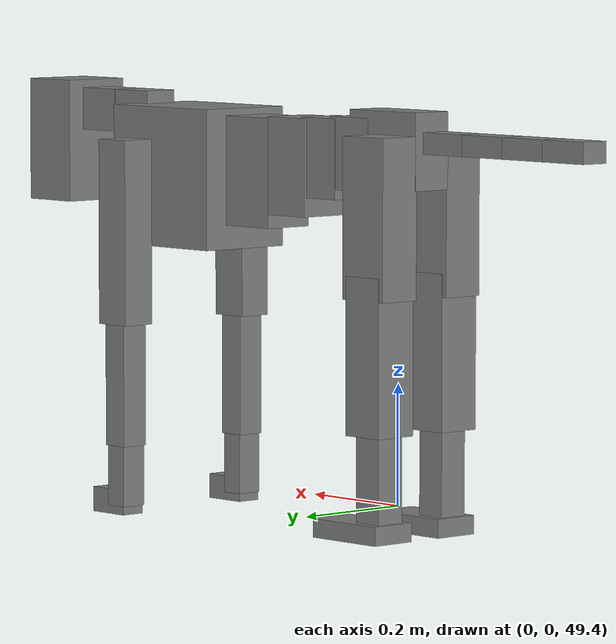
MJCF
<mujoco model="dog">

    <default>
        <joint armature="0.02" stiffness="1" damping="0.2" limited="true"/>
        <geom condim="3" friction="1 0.05 0.05" margin="0.01"/>
        <motor ctrllimited="true" ctrlrange="-1.0 1.0" forcelimited="true" gear="50"/>
    </default>

    <compiler inertiafromgeom="true" angle="radian"/>

    <option timestep="0.016" iterations="50" tolerance="1e-10" solver="Newton" jacobian="dense" cone="pyramidal"/>

    <size nconmax="20000" njmax="60000" nstack="5000000"/>
    <visual>
        <map force="0.1" zfar="30"/>
        <rgba haze="0.15 0.25 0.35 1"/>
        <quality shadowsize="2048"/>
        <global offwidth="800" offheight="800"/>
    </visual>

    <asset>
        <texture type="skybox" builtin="gradient" rgb1="0.3 0.5 0.7" rgb2="0 0 0" width="512" height="512"/>
        <texture name="texplane" type="2d" builtin="checker" rgb1=".2 .3 .4" rgb2=".1 0.15 0.2" width="512" height="512"
                 mark="cross" markrgb=".8 .8 .8"/>
        <texture name="texgeom" type="cube" builtin="flat" mark="cross" width="127" height="1278" rgb1="0.8 0.6 0.4"
                 rgb2="0.8 0.6 0.4" markrgb="1 1 1" random="0.01"/>

        <material name="matplane" reflectance="0.3" texture="texplane" texrepeat="1 1" texuniform="true"/>
        <material name="matgeom" texture="texgeom" texuniform="true" rgba="0.8 0.6 .4 1"/>
    </asset>

    <worldbody>
        <geom name="floor" pos="0 0 0" size="0 0 .25" type="plane" material="matplane" condim="3"/>

        <light directional="false" diffuse=".2 .2 .2" specular="0 0 0" pos="0 0 5" dir="0 0 -1" castshadow="false"/>
        <light mode="targetbodycom" target="torso" directional="false" diffuse=".8 .8 .8" specular="0.3 0.3 0.3"
               pos="0 0 4.0" dir="0 0 -1"/>

        <body name="root" pos="0 0 50">
            <freejoint name="root_1"/>
            <geom type="box" pos="0 0 -0.02" size="0.0774  0.0358  0.063" density="2030"/>

            <body name="spine1" pos="0.054 0 0">
                <joint name="spine1_y" axis="0 1 0" range="0 0.7" limited="true"/>
                <geom type="box" pos="0.02375 0 -0.03" size="0.04375  0.0375  0.05985" density="2030"/>

                <body name="spine2" pos="0.0612 0 0">
                    <joint name="spine2_y" axis="0 1 0" range="-0.15 0.15" limited="true"/>
                    <geom type="box" pos="0.03555  0  -0.04" size="0.04055  0.039  0.06615" density="2030"/>

                    <body name="spine3" pos="0.0730 0 0">
                        <joint name="spine3_y" axis="0 1 0" range="-0.15 0.15" limited="true"/>
                        <geom type="box" pos="0.03555  0  -0.057" size="0.04555  0.0445  0.081" density="2030"/>

                        <body name="spine4" pos="0.0780 0 0">
                            <joint name="spine4_y" axis="0 1 0" range="-0.15 0.15" limited="true"/>
                            <geom type="box" pos="0.05265  0  -0.07" size="0.05265  0.045  0.09135" density="2030"/>

                            <body name="torso" pos="0.1082 0 0">
                                <joint name="torso_y" axis="0 1 0" range="-0.15 0.15" limited="true"/>
                                <geom type="box" pos="0.11925  0  -0.085" size="0.11925  0.085  0.11745"
                                      density="2030"/>

                                <body name="neck1" pos="0.2160  0   0.0180">
                                    <joint name="neck1_y" axis="0 1 0" range="-1.2  -1" limited="true"/>
                                    <geom type="box" pos="0.0423  0  0" size="0.0423  0.03  0.036" density="2325"/>

                                    <body name="neck2" pos="0.0853  0  0">
                                        <joint name="neck2_y" axis="0 1 0" range="0.1  0" limited="true"/>
                                        <geom type="box" pos="0.0423  0  0" size="0.0423  0.03  0.036" density="2325"/>

                                        <body name="head" pos="0.0853  0  0">
                                            <joint name="head_y" axis="0 1 0" range="-0.3  -0.2" limited="true"/>
                                            <geom type="box" pos="0.0531  0  -0.055" size="0.0531  0.06  0.1044"
                                                  density="4030"/>

                                        </body>
                                    </body>
                                </body>

                                <body name="front_shoulder" pos="0.156  0   -0.0480">
                                    <joint name="front_shoulder_y" axis="0 1 0" range="-1 1.5" limited="true"/>
                                    <geom type="box" pos="0 0.13 -0.1287" size="0.0340  0.0291  0.1553" density="1158"/>
                                    <geom type="box" pos="0 -0.13 -0.1287" size="0.0340  0.0291  0.1553"
                                          density="1158"/>

                                    <body name="front_elbow" pos="0  0  -0.2573">
                                        <joint name="front_elbow_y" axis="0 1 0" range="-2 0" limited="true"/>
                                        <geom type="box" pos="0 0.13 -0.1157" size="0.0233  0.0238  0.1157"
                                              density="1081"/>
                                        <geom type="box" pos="0 -0.13 -0.1157" size="0.0233  0.0238  0.1157"
                                              density="1081"/>

                                        <body name="front_wrist" pos="0  0  -0.2313">
                                            <joint name="front_wrist_y" axis="0 1 0" range="-0.2 0" limited="true"/>
                                            <geom type="box" pos="0 0.13 -0.0444" size="0.0201  0.0223  0.0576"
                                                  density="1664"/>
                                            <geom type="box" pos="0 -0.13 -0.0444" size="0.0201  0.0223  0.0576"
                                                  density="1664"/>

                                            <body name="front_finger_end" pos="0  0  -0.0889">
                                                <joint name="front_finger_y" axis="0 1 0" range="-0.4 1"
                                                       limited="true"/>
                                                <geom type="box" pos="0.0211  0.13  -0.0060"
                                                      size="0.0387  0.0211  0.0210" density="1515"/>
                                                <geom type="box" pos="0.0211  -0.13  -0.0060"
                                                      size="0.0387  0.0211  0.0210" density="1515"/>

                                            </body>

                                        </body>
                                    </body>
                                </body>

                            </body>
                        </body>
                    </body>
                </body>
            </body>

            <body name="back_hip" pos="-0.03 0 -0.018">
                <joint name="back_hip_y" axis="0 1 0" range="-1.5 0.3" limited="true"/>
                <geom type="box" pos="0 0.07 -0.1086" size="0.0470  0.0369  0.1314" density="1154"/>
                <geom type="box" pos="0 -0.07 -0.1086" size="0.0470  0.0369  0.1314" density="1154"/>

                <body name="back_knee" pos="0  0  -0.2172">
                    <joint name="back_knee_y" axis="0 1 0" range="0 2.8" limited="true"/>
                    <geom type="box" pos="0 0.07 -0.1133" size="0.0385  0.0380  0.1288" density="1227"/>
                    <geom type="box" pos="0 -0.07 -0.1133" size="0.0385  0.0380  0.1288" density="1227"/>

                    <body name="back_ankle" pos="0  0  -0.2266">
                        <joint name="back_ankle_y" axis="0 1 0" range="-2.2 0" limited="true"/>
                        <geom type="box" pos="0 0.07 -0.0857" size="0.0259  0.0259  0.0969" density="1284"/>
                        <geom type="box" pos="0 -0.07 -0.0857" size="0.0259  0.0259  0.0969" density="1284"/>

                        <body name="back_toe_end" pos="0  0  -0.1713">
                            <joint name="back_toe_y" axis="0 1 0" range="-0.4 1" limited="true"/>
                            <geom type="box" pos="0.0401  0.07  -0.0006" size="0.0735  0.0401  0.0156" density="1515"/>
                            <geom type="box" pos="0.0401  -0.07  -0.0006" size="0.0735  0.0401  0.0156" density="1515"/>

                        </body>
                    </body>
                </body>
            </body>

            <body name="tail1" pos="-0.074 0 -0.006">
                <joint name="tail1_y" axis="0 1 0" range="-0.2 0.2" limited="true"/>
                <geom type="box" pos="-0.0536  0  0" size="0.045  0.025  0.0175" density="1587"/>

                <body name="tail2" pos="-0.09 0 0">
                    <joint name="tail2_y" axis="0 1 0" range="-0.2 0.2" limited="true"/>
                    <geom type="box" pos="-0.0536  0  0" size="0.045  0.025  0.0175" density="1587"/>

                    <body name="tail3" pos="-0.09 0 0">
                        <joint name="tail3_y" axis="0 1 0" range="-0.2 0.2" limited="true"/>
                        <geom type="box" pos="-0.0536  0  0" size="0.045  0.025  0.0175" density="1587"/>

                        <body name="tail4" pos="-0.09 0 0">
                            <joint name="tail4_y" axis="0 1 0" range="-0.2 0.2" limited="true"/>
                            <geom type="box" pos="-0.0536  0  0" size="0.045  0.025  0.0175" density="1587"/>

                        </body>
                    </body>
                </body>
            </body>
        </body>
    </worldbody>

    <actuator>
        <motor joint="spine1_y" forcerange="-150 150     "/>
        <motor joint="spine2_y" forcerange="-150 150     "/>
        <motor joint="spine3_y" forcerange="-150 150     "/>
        <motor joint="spine4_y" forcerange="-150 150     "/>
        <motor joint="torso_y" forcerange="-150 150     "/>
        <motor joint="neck1_y" forcerange="-100 100       "/>
        <motor joint="neck2_y" forcerange="-100 100       "/>
        <motor joint="head_y" forcerange="-150 150       "/>
        <motor joint="front_shoulder_y" forcerange="-135.36 158.62"/>
        <motor joint="front_elbow_y" forcerange="-151.45 121.60"/>
        <motor joint="front_wrist_y" forcerange="-101.55 77.12"/>
        <motor joint="front_finger_y" forcerange="-20.75 51.76"/>
        <motor joint="back_hip_y" forcerange="-322.80 368.61"/>
        <motor joint="back_knee_y" forcerange="-359.11 393.38"/>
        <motor joint="back_angle_y" forcerange="-179.24 134.60"/>
        <motor joint="back_toe_y" forcerange="-120.82 119.85"/>
        <motor joint="tail1_y" forcerange="-50 50     "/>
        <motor joint="tail2_y" forcerange="-50 50     "/>
        <motor joint="tail3_y" forcerange="-50 50     "/>
        <motor joint="tail4_y" forcerange="-50 50     "/>
    </actuator>
</mujoco>
